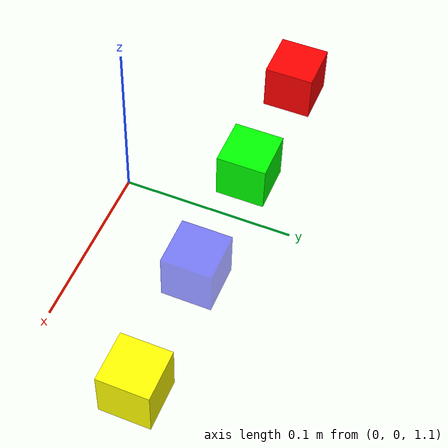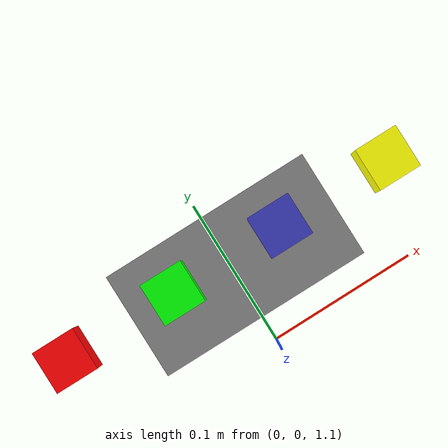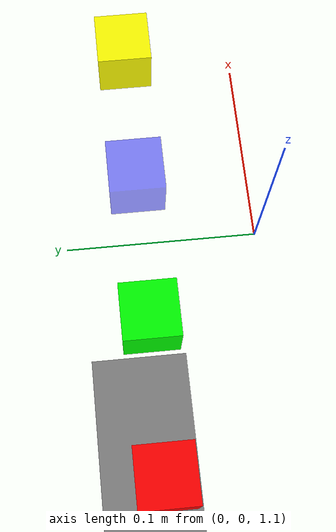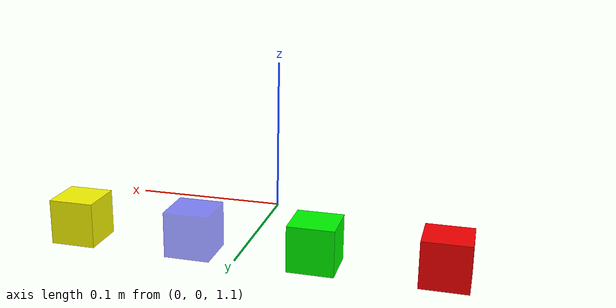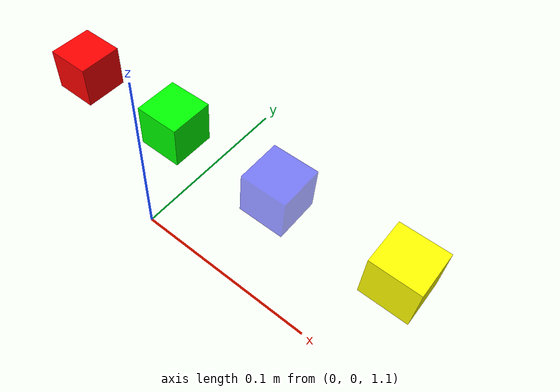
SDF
<sdf version="1.9">
 <world name="empty_world">
  <physics name="default_physics" type="ignored">
   <max_step_size>0.0166667</max_step_size>
   <real_time_factor>1</real_time_factor>
   <real_time_update_rate>60</real_time_update_rate>
  </physics>
  <light name="sun" type="directional">
   <pose>0 0 10 0 0 0</pose>
   <diffuse>0.8 0.8 0.8 1</diffuse>
   <specular>0.2 0.2 0.2 1</specular>
   <direction>-0.5 0.1 -0.9</direction>
  </light>
  <model name="ground_plane">
   <static>true</static>
   <link name="link">
    <collision name="collision"><geometry><box><size>50 50 0.1</size></box></geometry></collision>
    <visual name="visual">
     <geometry><box><size>50 50 0.1</size></box></geometry>
     <material><ambient>0.5 0.5 0.5 1</ambient><diffuse>0.5 0.5 0.5 1</diffuse></material>
    </visual>
   </link>
  </model>
  <model name="cube_object">
   <static>false</static>
   <link name="red_link">
    <pose>-0.12 0.06 1.10 0 0 0</pose>
    <collision name="collision"><geometry><box><size>0.03 0.03 0.03</size></box></geometry></collision>
    <visual name="visual">
     <geometry><box><size>0.03 0.03 0.03</size></box></geometry>
     <material><ambient>1 0 0 1</ambient><diffuse>1 0 0 1</diffuse></material>
    </visual>
    <inertial>
     <mass>0.005</mass>
     <inertia>
      <ixx>0.000000417</ixx>
      <iyy>0.000000417</iyy>
      <izz>0.000000417</izz>
      <ixy>0</ixy>
      <ixz>0</ixz>
      <iyz>0</iyz>
     </inertia>
    </inertial>
   </link>
  </model>
  <model name="cube_object1">
   <static>false</static>
   <link name="green_link">
    <pose>-0.04 0.06 1.10 0 0 0</pose>
    <collision name="collision"><geometry><box><size>0.03 0.03 0.03</size></box></geometry></collision>
    <visual name="visual">
     <geometry><box><size>0.03 0.03 0.03</size></box></geometry>
     <material><ambient>0 1 0 1</ambient><diffuse>0 1 0 1</diffuse></material>
    </visual>
    <inertial>
     <mass>0.005</mass>
     <inertia>
      <ixx>0.000000417</ixx>
      <iyy>0.000000417</iyy>
      <izz>0.000000417</izz>
      <ixy>0</ixy>
      <ixz>0</ixz>
      <iyz>0</iyz>
     </inertia>
    </inertial>
   </link>
  </model>
  <model name="cube_object2">
   <static>false</static>
   <link name="blue_link">
    <pose>0.04 0.06 1.10 0 0 0</pose>
    <collision name="collision"><geometry><box><size>0.03 0.03 0.03</size></box></geometry></collision>
    <visual name="visual">
     <geometry><box><size>0.03 0.03 0.03</size></box></geometry>
     <material><ambient>0 0 1 0.5</ambient><diffuse>0 0 1 0.5</diffuse></material>
    </visual>
    <inertial>
     <mass>0.005</mass>
     <inertia>
      <ixx>0.000000417</ixx>
      <iyy>0.000000417</iyy>
      <izz>0.000000417</izz>
      <ixy>0</ixy>
      <ixz>0</ixz>
      <iyz>0</iyz>
     </inertia>
    </inertial>
   </link>
  </model>
  <model name="cube_object3">
   <static>false</static>
   <link name="yellow_link">
    <pose>0.12 0.06 1.10 0 0 0</pose>
    <collision name="collision"><geometry><box><size>0.03 0.03 0.03</size></box></geometry></collision>
    <visual name="visual">
     <geometry><box><size>0.03 0.03 0.03</size></box></geometry>
     <material><ambient>1 1 0 1</ambient><diffuse>1 1 0 1</diffuse></material>
    </visual>
    <inertial>
     <mass>0.005</mass>
     <inertia>
      <ixx>0.000000417</ixx>
      <iyy>0.000000417</iyy>
      <izz>0.000000417</izz>
      <ixy>0</ixy>
      <ixz>0</ixz>
      <iyz>0</iyz>
     </inertia>
    </inertial>
   </link>
  </model>
 </world>
</sdf>
